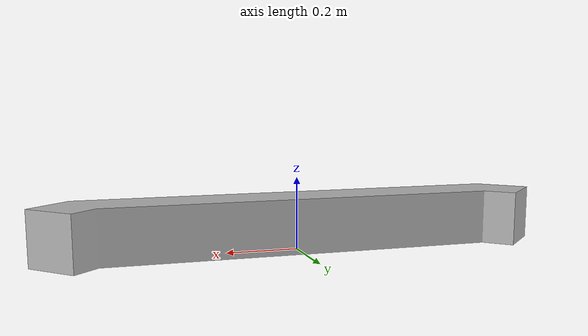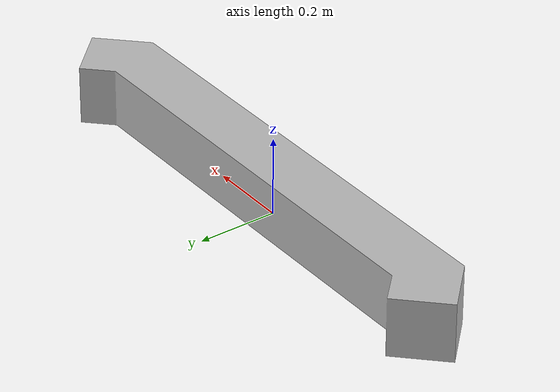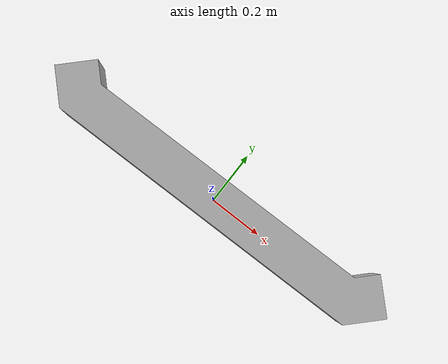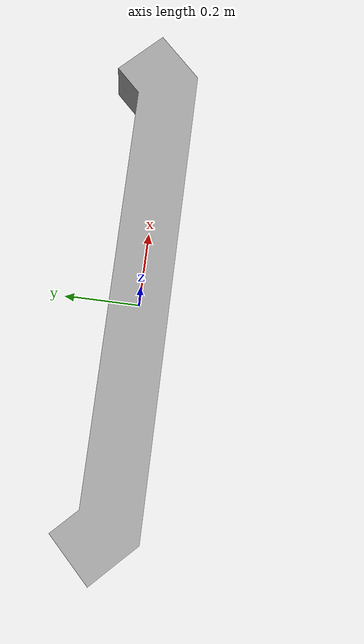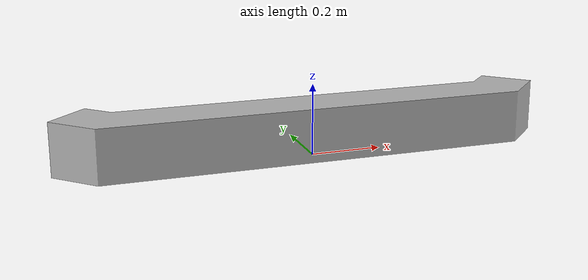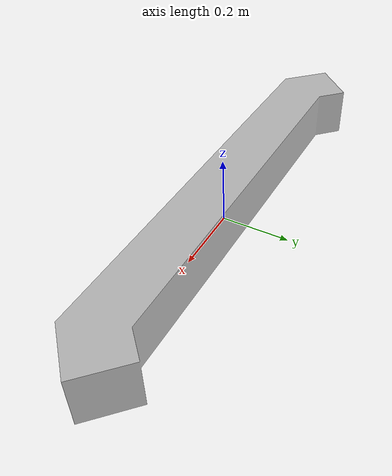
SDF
<sdf version="1.7">
  <model name="railing" canonical_link="railing_link">
    <link name="railing_link">
      <visual name="visual">
        <pose>0 0 0 1.5708 0 0</pose>
        <geometry>
          <mesh>
            <uri>model://railing/meshes/railing.obj</uri>
            <scale>1 1 1</scale>
          </mesh>
        </geometry>
      </visual>

      <collision name="collision">
        <pose>0 0 0 1.5708 0 0</pose>
        <geometry>
          <mesh>
            <uri>model://railing/meshes/railing.obj</uri>
            <scale>1 1 1</scale>
          </mesh>
        </geometry>
      </collision>
    </link>
  </model>
</sdf>
